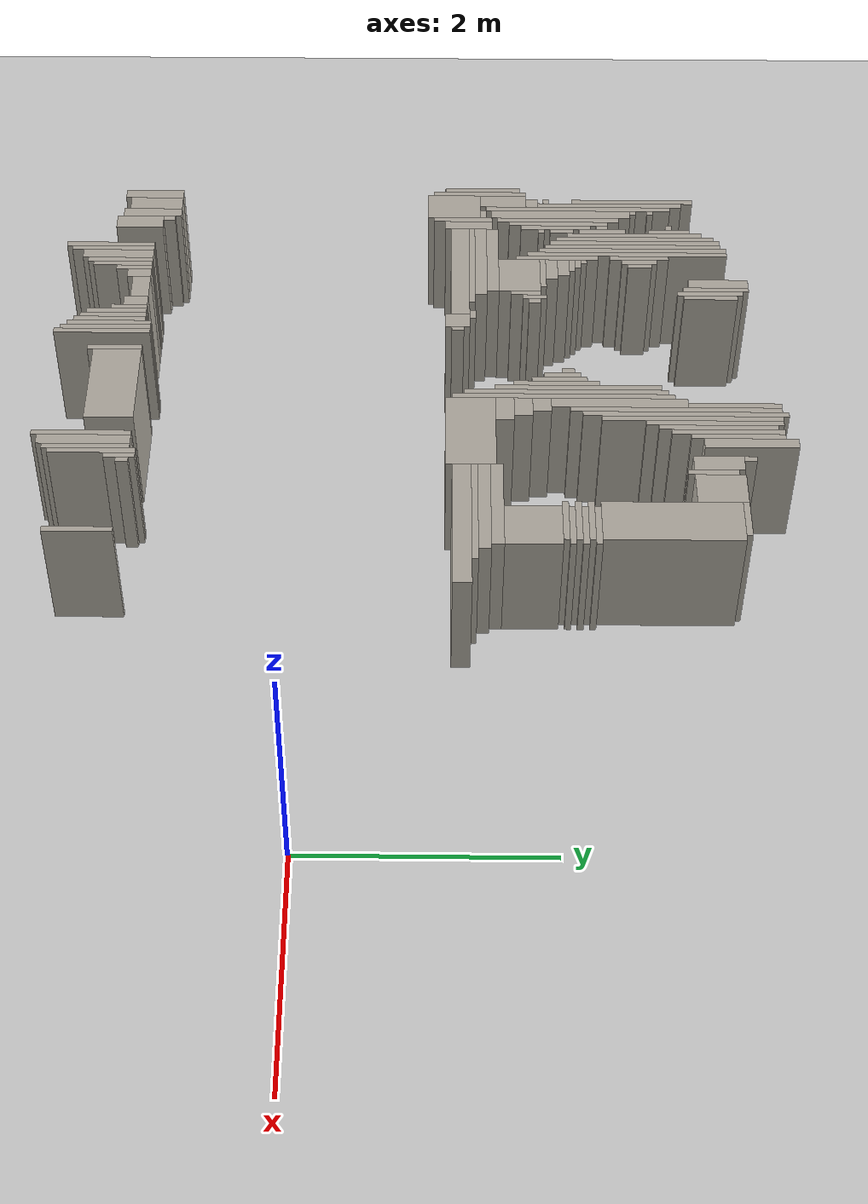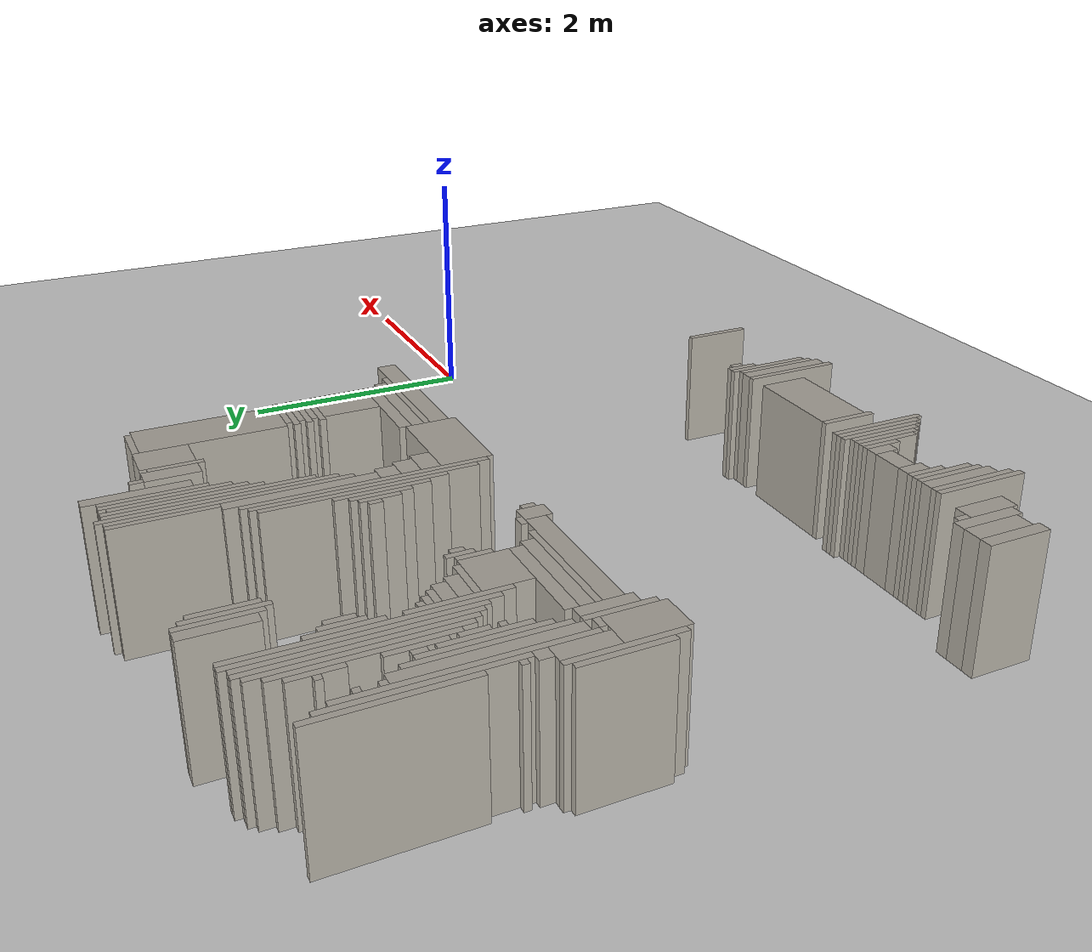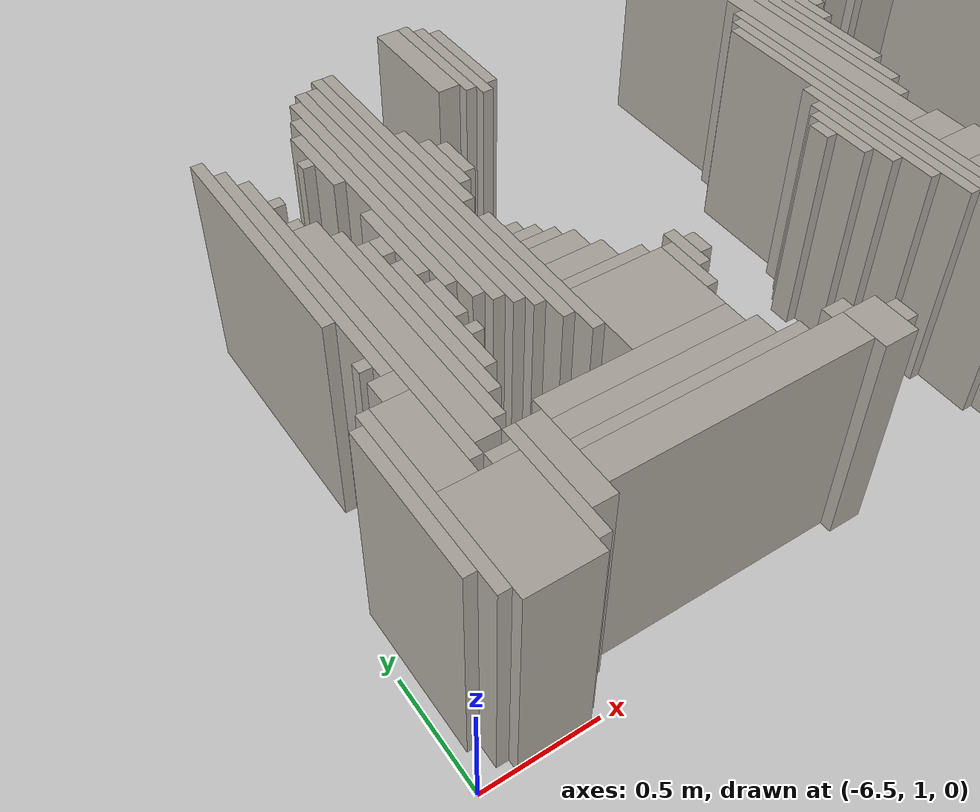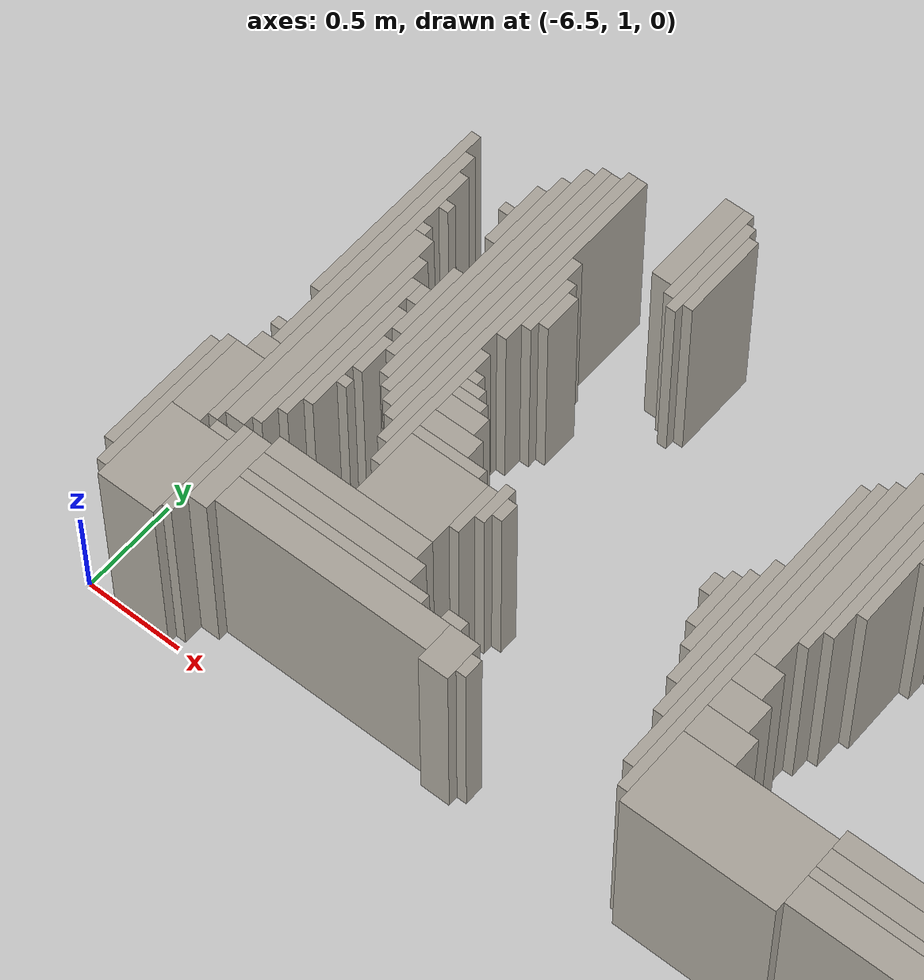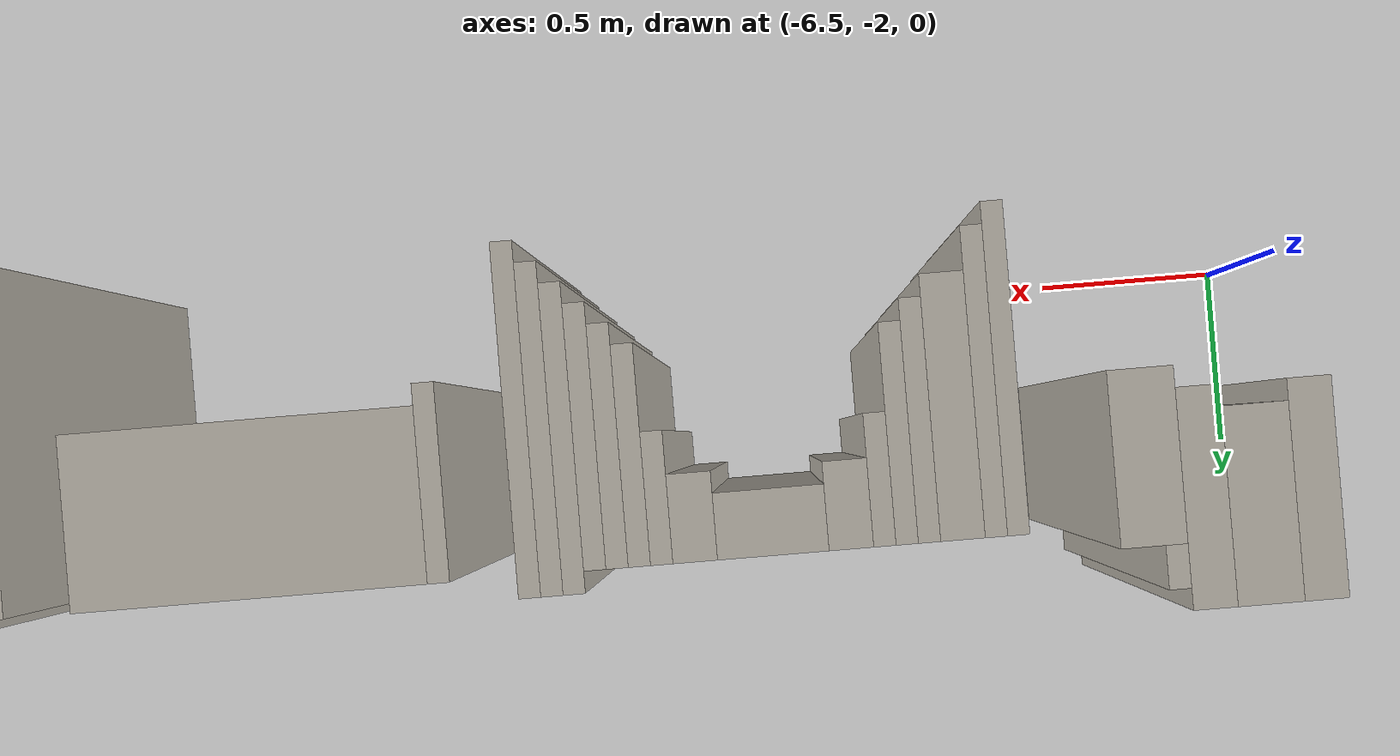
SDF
<sdf version="1.6">
 <world name="fr079_office">
  <include><uri>model://sun</uri></include>
  <include><uri>model://ground_plane</uri></include>
  <model name="fr079_office_walls">
   <static>true</static>
   <link name="w1408">
    <pose>-3.373 -1.756 0.500 0 0 0</pose>
    <collision name="c"><geometry><box><size>0.050 0.800 1.000</size></box></geometry></collision>
    <visual name="v">
     <geometry><box><size>0.050 0.800 1.000</size></box></geometry>
     <material><ambient>0.68 0.66 0.62 1</ambient><diffuse>0.68 0.66 0.62 1</diffuse></material>
    </visual>
   </link>
   <link name="w1421">
    <pose>-5.673 -1.731 0.500 0 0 0</pose>
    <collision name="c"><geometry><box><size>0.050 0.750 1.000</size></box></geometry></collision>
    <visual name="v">
     <geometry><box><size>0.050 0.750 1.000</size></box></geometry>
     <material><ambient>0.68 0.66 0.62 1</ambient><diffuse>0.68 0.66 0.62 1</diffuse></material>
    </visual>
   </link>
   <link name="w1422">
    <pose>-4.573 -1.706 0.500 0 0 0</pose>
    <collision name="c"><geometry><box><size>0.050 0.800 1.000</size></box></geometry></collision>
    <visual name="v">
     <geometry><box><size>0.050 0.800 1.000</size></box></geometry>
     <material><ambient>0.68 0.66 0.62 1</ambient><diffuse>0.68 0.66 0.62 1</diffuse></material>
    </visual>
   </link>
   <link name="w1423">
    <pose>-3.298 -1.731 0.500 0 0 0</pose>
    <collision name="c"><geometry><box><size>0.100 0.750 1.000</size></box></geometry></collision>
    <visual name="v">
     <geometry><box><size>0.100 0.750 1.000</size></box></geometry>
     <material><ambient>0.68 0.66 0.62 1</ambient><diffuse>0.68 0.66 0.62 1</diffuse></material>
    </visual>
   </link>
   <link name="w1435">
    <pose>-5.623 -1.706 0.500 0 0 0</pose>
    <collision name="c"><geometry><box><size>0.050 0.700 1.000</size></box></geometry></collision>
    <visual name="v">
     <geometry><box><size>0.050 0.700 1.000</size></box></geometry>
     <material><ambient>0.68 0.66 0.62 1</ambient><diffuse>0.68 0.66 0.62 1</diffuse></material>
    </visual>
   </link>
   <link name="w1436">
    <pose>-4.623 -1.681 0.500 0 0 0</pose>
    <collision name="c"><geometry><box><size>0.050 0.750 1.000</size></box></geometry></collision>
    <visual name="v">
     <geometry><box><size>0.050 0.750 1.000</size></box></geometry>
     <material><ambient>0.68 0.66 0.62 1</ambient><diffuse>0.68 0.66 0.62 1</diffuse></material>
    </visual>
   </link>
   <link name="w1437">
    <pose>-3.223 -1.706 0.500 0 0 0</pose>
    <collision name="c"><geometry><box><size>0.050 0.700 1.000</size></box></geometry></collision>
    <visual name="v">
     <geometry><box><size>0.050 0.700 1.000</size></box></geometry>
     <material><ambient>0.68 0.66 0.62 1</ambient><diffuse>0.68 0.66 0.62 1</diffuse></material>
    </visual>
   </link>
   <link name="w1452">
    <pose>-4.673 -1.656 0.500 0 0 0</pose>
    <collision name="c"><geometry><box><size>0.050 0.700 1.000</size></box></geometry></collision>
    <visual name="v">
     <geometry><box><size>0.050 0.700 1.000</size></box></geometry>
     <material><ambient>0.68 0.66 0.62 1</ambient><diffuse>0.68 0.66 0.62 1</diffuse></material>
    </visual>
   </link>
   <link name="w1455">
    <pose>-3.173 -1.656 0.500 0 0 0</pose>
    <collision name="c"><geometry><box><size>0.050 0.700 1.000</size></box></geometry></collision>
    <visual name="v">
     <geometry><box><size>0.050 0.700 1.000</size></box></geometry>
     <material><ambient>0.68 0.66 0.62 1</ambient><diffuse>0.68 0.66 0.62 1</diffuse></material>
    </visual>
   </link>
   <link name="w1466">
    <pose>-5.548 -1.656 0.500 0 0 0</pose>
    <collision name="c"><geometry><box><size>0.100 0.600 1.000</size></box></geometry></collision>
    <visual name="v">
     <geometry><box><size>0.100 0.600 1.000</size></box></geometry>
     <material><ambient>0.68 0.66 0.62 1</ambient><diffuse>0.68 0.66 0.62 1</diffuse></material>
    </visual>
   </link>
   <link name="w1467">
    <pose>-4.723 -1.656 0.500 0 0 0</pose>
    <collision name="c"><geometry><box><size>0.050 0.600 1.000</size></box></geometry></collision>
    <visual name="v">
     <geometry><box><size>0.050 0.600 1.000</size></box></geometry>
     <material><ambient>0.68 0.66 0.62 1</ambient><diffuse>0.68 0.66 0.62 1</diffuse></material>
    </visual>
   </link>
   <link name="w1469">
    <pose>-2.323 -1.681 0.500 0 0 0</pose>
    <collision name="c"><geometry><box><size>0.050 0.550 1.000</size></box></geometry></collision>
    <visual name="v">
     <geometry><box><size>0.050 0.550 1.000</size></box></geometry>
     <material><ambient>0.68 0.66 0.62 1</ambient><diffuse>0.68 0.66 0.62 1</diffuse></material>
    </visual>
   </link>
   <link name="w1487">
    <pose>-5.473 -1.631 0.500 0 0 0</pose>
    <collision name="c"><geometry><box><size>0.050 0.550 1.000</size></box></geometry></collision>
    <visual name="v">
     <geometry><box><size>0.050 0.550 1.000</size></box></geometry>
     <material><ambient>0.68 0.66 0.62 1</ambient><diffuse>0.68 0.66 0.62 1</diffuse></material>
    </visual>
   </link>
   <link name="w1488">
    <pose>-4.773 -1.631 0.500 0 0 0</pose>
    <collision name="c"><geometry><box><size>0.050 0.550 1.000</size></box></geometry></collision>
    <visual name="v">
     <geometry><box><size>0.050 0.550 1.000</size></box></geometry>
     <material><ambient>0.68 0.66 0.62 1</ambient><diffuse>0.68 0.66 0.62 1</diffuse></material>
    </visual>
   </link>
   <link name="w1503">
    <pose>-5.423 -1.606 0.500 0 0 0</pose>
    <collision name="c"><geometry><box><size>0.050 0.500 1.000</size></box></geometry></collision>
    <visual name="v">
     <geometry><box><size>0.050 0.500 1.000</size></box></geometry>
     <material><ambient>0.68 0.66 0.62 1</ambient><diffuse>0.68 0.66 0.62 1</diffuse></material>
    </visual>
   </link>
   <link name="w1504">
    <pose>-4.823 -1.606 0.500 0 0 0</pose>
    <collision name="c"><geometry><box><size>0.050 0.500 1.000</size></box></geometry></collision>
    <visual name="v">
     <geometry><box><size>0.050 0.500 1.000</size></box></geometry>
     <material><ambient>0.68 0.66 0.62 1</ambient><diffuse>0.68 0.66 0.62 1</diffuse></material>
    </visual>
   </link>
   <link name="w1516">
    <pose>-4.373 -1.581 0.500 0 0 0</pose>
    <collision name="c"><geometry><box><size>0.050 0.450 1.000</size></box></geometry></collision>
    <visual name="v">
     <geometry><box><size>0.050 0.450 1.000</size></box></geometry>
     <material><ambient>0.68 0.66 0.62 1</ambient><diffuse>0.68 0.66 0.62 1</diffuse></material>
    </visual>
   </link>
   <link name="w1532">
    <pose>-3.948 -1.556 0.500 0 0 0</pose>
    <collision name="c"><geometry><box><size>0.800 0.400 1.000</size></box></geometry></collision>
    <visual name="v">
     <geometry><box><size>0.800 0.400 1.000</size></box></geometry>
     <material><ambient>0.68 0.66 0.62 1</ambient><diffuse>0.68 0.66 0.62 1</diffuse></material>
    </visual>
   </link>
   <link name="w1552">
    <pose>-5.973 -1.506 0.500 0 0 0</pose>
    <collision name="c"><geometry><box><size>0.150 0.400 1.000</size></box></geometry></collision>
    <visual name="v">
     <geometry><box><size>0.150 0.400 1.000</size></box></geometry>
     <material><ambient>0.68 0.66 0.62 1</ambient><diffuse>0.68 0.66 0.62 1</diffuse></material>
    </visual>
   </link>
   <link name="w1574">
    <pose>-6.348 -1.406 0.500 0 0 0</pose>
    <collision name="c"><geometry><box><size>0.100 0.500 1.000</size></box></geometry></collision>
    <visual name="v">
     <geometry><box><size>0.100 0.500 1.000</size></box></geometry>
     <material><ambient>0.68 0.66 0.62 1</ambient><diffuse>0.68 0.66 0.62 1</diffuse></material>
    </visual>
   </link>
   <link name="w1575">
    <pose>-6.098 -1.406 0.500 0 0 0</pose>
    <collision name="c"><geometry><box><size>0.100 0.500 1.000</size></box></geometry></collision>
    <visual name="v">
     <geometry><box><size>0.100 0.500 1.000</size></box></geometry>
     <material><ambient>0.68 0.66 0.62 1</ambient><diffuse>0.68 0.66 0.62 1</diffuse></material>
    </visual>
   </link>
   <link name="w1576">
    <pose>-5.373 -1.506 0.500 0 0 0</pose>
    <collision name="c"><geometry><box><size>0.050 0.300 1.000</size></box></geometry></collision>
    <visual name="v">
     <geometry><box><size>0.050 0.300 1.000</size></box></geometry>
     <material><ambient>0.68 0.66 0.62 1</ambient><diffuse>0.68 0.66 0.62 1</diffuse></material>
    </visual>
   </link>
   <link name="w1577">
    <pose>-4.873 -1.506 0.500 0 0 0</pose>
    <collision name="c"><geometry><box><size>0.050 0.300 1.000</size></box></geometry></collision>
    <visual name="v">
     <geometry><box><size>0.050 0.300 1.000</size></box></geometry>
     <material><ambient>0.68 0.66 0.62 1</ambient><diffuse>0.68 0.66 0.62 1</diffuse></material>
    </visual>
   </link>
   <link name="w1607">
    <pose>-6.223 -1.381 0.500 0 0 0</pose>
    <collision name="c"><geometry><box><size>0.150 0.450 1.000</size></box></geometry></collision>
    <visual name="v">
     <geometry><box><size>0.150 0.450 1.000</size></box></geometry>
     <material><ambient>0.68 0.66 0.62 1</ambient><diffuse>0.68 0.66 0.62 1</diffuse></material>
    </visual>
   </link>
   <link name="w1635">
    <pose>-5.298 -1.456 0.500 0 0 0</pose>
    <collision name="c"><geometry><box><size>0.100 0.200 1.000</size></box></geometry></collision>
    <visual name="v">
     <geometry><box><size>0.100 0.200 1.000</size></box></geometry>
     <material><ambient>0.68 0.66 0.62 1</ambient><diffuse>0.68 0.66 0.62 1</diffuse></material>
    </visual>
   </link>
   <link name="w1636">
    <pose>-4.948 -1.456 0.500 0 0 0</pose>
    <collision name="c"><geometry><box><size>0.100 0.200 1.000</size></box></geometry></collision>
    <visual name="v">
     <geometry><box><size>0.100 0.200 1.000</size></box></geometry>
     <material><ambient>0.68 0.66 0.62 1</ambient><diffuse>0.68 0.66 0.62 1</diffuse></material>
    </visual>
   </link>
   <link name="w1637">
    <pose>-3.123 -1.431 0.500 0 0 0</pose>
    <collision name="c"><geometry><box><size>0.050 0.250 1.000</size></box></geometry></collision>
    <visual name="v">
     <geometry><box><size>0.050 0.250 1.000</size></box></geometry>
     <material><ambient>0.68 0.66 0.62 1</ambient><diffuse>0.68 0.66 0.62 1</diffuse></material>
    </visual>
   </link>
   <link name="w1667">
    <pose>-5.123 -1.431 0.500 0 0 0</pose>
    <collision name="c"><geometry><box><size>0.250 0.150 1.000</size></box></geometry></collision>
    <visual name="v">
     <geometry><box><size>0.250 0.150 1.000</size></box></geometry>
     <material><ambient>0.68 0.66 0.62 1</ambient><diffuse>0.68 0.66 0.62 1</diffuse></material>
    </visual>
   </link>
   <link name="w1688">
    <pose>-3.073 -1.406 0.500 0 0 0</pose>
    <collision name="c"><geometry><box><size>0.050 0.100 1.000</size></box></geometry></collision>
    <visual name="v">
     <geometry><box><size>0.050 0.100 1.000</size></box></geometry>
     <material><ambient>0.68 0.66 0.62 1</ambient><diffuse>0.68 0.66 0.62 1</diffuse></material>
    </visual>
   </link>
   <link name="w1722">
    <pose>-6.023 -1.256 0.500 0 0 0</pose>
    <collision name="c"><geometry><box><size>0.050 0.100 1.000</size></box></geometry></collision>
    <visual name="v">
     <geometry><box><size>0.050 0.100 1.000</size></box></geometry>
     <material><ambient>0.68 0.66 0.62 1</ambient><diffuse>0.68 0.66 0.62 1</diffuse></material>
    </visual>
   </link>
   <link name="w1830">
    <pose>-6.198 1.219 0.500 0 0 0</pose>
    <collision name="c"><geometry><box><size>0.300 0.450 1.000</size></box></geometry></collision>
    <visual name="v">
     <geometry><box><size>0.300 0.450 1.000</size></box></geometry>
     <material><ambient>0.68 0.66 0.62 1</ambient><diffuse>0.68 0.66 0.62 1</diffuse></material>
    </visual>
   </link>
   <link name="w1844">
    <pose>-6.373 1.444 0.500 0 0 0</pose>
    <collision name="c"><geometry><box><size>0.050 0.800 1.000</size></box></geometry></collision>
    <visual name="v">
     <geometry><box><size>0.050 0.800 1.000</size></box></geometry>
     <material><ambient>0.68 0.66 0.62 1</ambient><diffuse>0.68 0.66 0.62 1</diffuse></material>
    </visual>
   </link>
   <link name="w1845">
    <pose>-6.023 1.294 0.500 0 0 0</pose>
    <collision name="c"><geometry><box><size>0.050 0.500 1.000</size></box></geometry></collision>
    <visual name="v">
     <geometry><box><size>0.050 0.500 1.000</size></box></geometry>
     <material><ambient>0.68 0.66 0.62 1</ambient><diffuse>0.68 0.66 0.62 1</diffuse></material>
    </visual>
   </link>
   <link name="w1885">
    <pose>-6.423 1.469 0.500 0 0 0</pose>
    <collision name="c"><geometry><box><size>0.050 0.650 1.000</size></box></geometry></collision>
    <visual name="v">
     <geometry><box><size>0.050 0.650 1.000</size></box></geometry>
     <material><ambient>0.68 0.66 0.62 1</ambient><diffuse>0.68 0.66 0.62 1</diffuse></material>
    </visual>
   </link>
   <link name="w1886">
    <pose>-5.948 1.344 0.500 0 0 0</pose>
    <collision name="c"><geometry><box><size>0.100 0.400 1.000</size></box></geometry></collision>
    <visual name="v">
     <geometry><box><size>0.100 0.400 1.000</size></box></geometry>
     <material><ambient>0.68 0.66 0.62 1</ambient><diffuse>0.68 0.66 0.62 1</diffuse></material>
    </visual>
   </link>
   <link name="w1887">
    <pose>-4.723 1.244 0.500 0 0 0</pose>
    <collision name="c"><geometry><box><size>0.150 0.200 1.000</size></box></geometry></collision>
    <visual name="v">
     <geometry><box><size>0.150 0.200 1.000</size></box></geometry>
     <material><ambient>0.68 0.66 0.62 1</ambient><diffuse>0.68 0.66 0.62 1</diffuse></material>
    </visual>
   </link>
   <link name="w1888">
    <pose>-3.423 1.344 0.500 0 0 0</pose>
    <collision name="c"><geometry><box><size>0.750 0.400 1.000</size></box></geometry></collision>
    <visual name="v">
     <geometry><box><size>0.750 0.400 1.000</size></box></geometry>
     <material><ambient>0.68 0.66 0.62 1</ambient><diffuse>0.68 0.66 0.62 1</diffuse></material>
    </visual>
   </link>
   <link name="w1916">
    <pose>-5.348 1.269 0.500 0 0 0</pose>
    <collision name="c"><geometry><box><size>1.100 0.150 1.000</size></box></geometry></collision>
    <visual name="v">
     <geometry><box><size>1.100 0.150 1.000</size></box></geometry>
     <material><ambient>0.68 0.66 0.62 1</ambient><diffuse>0.68 0.66 0.62 1</diffuse></material>
    </visual>
   </link>
   <link name="w1917">
    <pose>-4.623 1.244 0.500 0 0 0</pose>
    <collision name="c"><geometry><box><size>0.050 0.100 1.000</size></box></geometry></collision>
    <visual name="v">
     <geometry><box><size>0.050 0.100 1.000</size></box></geometry>
     <material><ambient>0.68 0.66 0.62 1</ambient><diffuse>0.68 0.66 0.62 1</diffuse></material>
    </visual>
   </link>
   <link name="w1918">
    <pose>-3.823 2.094 0.500 0 0 0</pose>
    <collision name="c"><geometry><box><size>0.050 1.800 1.000</size></box></geometry></collision>
    <visual name="v">
     <geometry><box><size>0.050 1.800 1.000</size></box></geometry>
     <material><ambient>0.68 0.66 0.62 1</ambient><diffuse>0.68 0.66 0.62 1</diffuse></material>
    </visual>
   </link>
   <link name="w1919">
    <pose>-2.423 1.269 0.500 0 0 0</pose>
    <collision name="c"><geometry><box><size>1.250 0.150 1.000</size></box></geometry></collision>
    <visual name="v">
     <geometry><box><size>1.250 0.150 1.000</size></box></geometry>
     <material><ambient>0.68 0.66 0.62 1</ambient><diffuse>0.68 0.66 0.62 1</diffuse></material>
    </visual>
   </link>
   <link name="w1965">
    <pose>-3.873 2.119 0.500 0 0 0</pose>
    <collision name="c"><geometry><box><size>0.050 1.650 1.000</size></box></geometry></collision>
    <visual name="v">
     <geometry><box><size>0.050 1.650 1.000</size></box></geometry>
     <material><ambient>0.68 0.66 0.62 1</ambient><diffuse>0.68 0.66 0.62 1</diffuse></material>
    </visual>
   </link>
   <link name="w1977">
    <pose>-5.423 1.369 0.500 0 0 0</pose>
    <collision name="c"><geometry><box><size>0.950 0.050 1.000</size></box></geometry></collision>
    <visual name="v">
     <geometry><box><size>0.950 0.050 1.000</size></box></geometry>
     <material><ambient>0.68 0.66 0.62 1</ambient><diffuse>0.68 0.66 0.62 1</diffuse></material>
    </visual>
   </link>
   <link name="w1978">
    <pose>-4.798 1.369 0.500 0 0 0</pose>
    <collision name="c"><geometry><box><size>0.100 0.050 1.000</size></box></geometry></collision>
    <visual name="v">
     <geometry><box><size>0.100 0.050 1.000</size></box></geometry>
     <material><ambient>0.68 0.66 0.62 1</ambient><diffuse>0.68 0.66 0.62 1</diffuse></material>
    </visual>
   </link>
   <link name="w1979">
    <pose>-2.548 1.369 0.500 0 0 0</pose>
    <collision name="c"><geometry><box><size>1.000 0.050 1.000</size></box></geometry></collision>
    <visual name="v">
     <geometry><box><size>1.000 0.050 1.000</size></box></geometry>
     <material><ambient>0.68 0.66 0.62 1</ambient><diffuse>0.68 0.66 0.62 1</diffuse></material>
    </visual>
   </link>
   <link name="w1990">
    <pose>-5.473 1.444 0.500 0 0 0</pose>
    <collision name="c"><geometry><box><size>0.850 0.100 1.000</size></box></geometry></collision>
    <visual name="v">
     <geometry><box><size>0.850 0.100 1.000</size></box></geometry>
     <material><ambient>0.68 0.66 0.62 1</ambient><diffuse>0.68 0.66 0.62 1</diffuse></material>
    </visual>
   </link>
   <link name="w1991">
    <pose>-2.598 1.444 0.500 0 0 0</pose>
    <collision name="c"><geometry><box><size>0.900 0.100 1.000</size></box></geometry></collision>
    <visual name="v">
     <geometry><box><size>0.900 0.100 1.000</size></box></geometry>
     <material><ambient>0.68 0.66 0.62 1</ambient><diffuse>0.68 0.66 0.62 1</diffuse></material>
    </visual>
   </link>
   <link name="w2010">
    <pose>-6.273 1.644 0.500 0 0 0</pose>
    <collision name="c"><geometry><box><size>0.150 0.400 1.000</size></box></geometry></collision>
    <visual name="v">
     <geometry><box><size>0.150 0.400 1.000</size></box></geometry>
     <material><ambient>0.68 0.66 0.62 1</ambient><diffuse>0.68 0.66 0.62 1</diffuse></material>
    </visual>
   </link>
   <link name="w2011">
    <pose>-6.098 1.469 0.500 0 0 0</pose>
    <collision name="c"><geometry><box><size>0.100 0.050 1.000</size></box></geometry></collision>
    <visual name="v">
     <geometry><box><size>0.100 0.050 1.000</size></box></geometry>
     <material><ambient>0.68 0.66 0.62 1</ambient><diffuse>0.68 0.66 0.62 1</diffuse></material>
    </visual>
   </link>
   <link name="w2026">
    <pose>-6.173 2.294 0.500 0 0 0</pose>
    <collision name="c"><geometry><box><size>0.050 1.600 1.000</size></box></geometry></collision>
    <visual name="v">
     <geometry><box><size>0.050 1.600 1.000</size></box></geometry>
     <material><ambient>0.68 0.66 0.62 1</ambient><diffuse>0.68 0.66 0.62 1</diffuse></material>
    </visual>
   </link>
   <link name="w2027">
    <pose>-5.498 1.544 0.500 0 0 0</pose>
    <collision name="c"><geometry><box><size>0.800 0.100 1.000</size></box></geometry></collision>
    <visual name="v">
     <geometry><box><size>0.800 0.100 1.000</size></box></geometry>
     <material><ambient>0.68 0.66 0.62 1</ambient><diffuse>0.68 0.66 0.62 1</diffuse></material>
    </visual>
   </link>
   <link name="w2028">
    <pose>-2.623 1.544 0.500 0 0 0</pose>
    <collision name="c"><geometry><box><size>0.850 0.100 1.000</size></box></geometry></collision>
    <visual name="v">
     <geometry><box><size>0.850 0.100 1.000</size></box></geometry>
     <material><ambient>0.68 0.66 0.62 1</ambient><diffuse>0.68 0.66 0.62 1</diffuse></material>
    </visual>
   </link>
   <link name="w2041">
    <pose>-6.098 2.144 0.500 0 0 0</pose>
    <collision name="c"><geometry><box><size>0.100 1.200 1.000</size></box></geometry></collision>
    <visual name="v">
     <geometry><box><size>0.100 1.200 1.000</size></box></geometry>
     <material><ambient>0.68 0.66 0.62 1</ambient><diffuse>0.68 0.66 0.62 1</diffuse></material>
    </visual>
   </link>
   <link name="w2042">
    <pose>-3.923 2.219 0.500 0 0 0</pose>
    <collision name="c"><geometry><box><size>0.050 1.350 1.000</size></box></geometry></collision>
    <visual name="v">
     <geometry><box><size>0.050 1.350 1.000</size></box></geometry>
     <material><ambient>0.68 0.66 0.62 1</ambient><diffuse>0.68 0.66 0.62 1</diffuse></material>
    </visual>
   </link>
   <link name="w2043">
    <pose>-3.673 1.619 0.500 0 0 0</pose>
    <collision name="c"><geometry><box><size>0.250 0.150 1.000</size></box></geometry></collision>
    <visual name="v">
     <geometry><box><size>0.250 0.150 1.000</size></box></geometry>
     <material><ambient>0.68 0.66 0.62 1</ambient><diffuse>0.68 0.66 0.62 1</diffuse></material>
    </visual>
   </link>
   <link name="w2057">
    <pose>-6.023 2.119 0.500 0 0 0</pose>
    <collision name="c"><geometry><box><size>0.050 1.050 1.000</size></box></geometry></collision>
    <visual name="v">
     <geometry><box><size>0.050 1.050 1.000</size></box></geometry>
     <material><ambient>0.68 0.66 0.62 1</ambient><diffuse>0.68 0.66 0.62 1</diffuse></material>
    </visual>
   </link>
   <link name="w2058">
    <pose>-5.298 1.769 0.500 0 0 0</pose>
    <collision name="c"><geometry><box><size>0.400 0.350 1.000</size></box></geometry></collision>
    <visual name="v">
     <geometry><box><size>0.400 0.350 1.000</size></box></geometry>
     <material><ambient>0.68 0.66 0.62 1</ambient><diffuse>0.68 0.66 0.62 1</diffuse></material>
    </visual>
   </link>
   <link name="w2059">
    <pose>-2.398 1.819 0.500 0 0 0</pose>
    <collision name="c"><geometry><box><size>0.400 0.450 1.000</size></box></geometry></collision>
    <visual name="v">
     <geometry><box><size>0.400 0.450 1.000</size></box></geometry>
     <material><ambient>0.68 0.66 0.62 1</ambient><diffuse>0.68 0.66 0.62 1</diffuse></material>
    </visual>
   </link>
   <link name="w2081">
    <pose>-5.973 2.119 0.500 0 0 0</pose>
    <collision name="c"><geometry><box><size>0.050 0.850 1.000</size></box></geometry></collision>
    <visual name="v">
     <geometry><box><size>0.050 0.850 1.000</size></box></geometry>
     <material><ambient>0.68 0.66 0.62 1</ambient><diffuse>0.68 0.66 0.62 1</diffuse></material>
    </visual>
   </link>
   <link name="w2082">
    <pose>-5.073 1.819 0.500 0 0 0</pose>
    <collision name="c"><geometry><box><size>0.050 0.250 1.000</size></box></geometry></collision>
    <visual name="v">
     <geometry><box><size>0.050 0.250 1.000</size></box></geometry>
     <material><ambient>0.68 0.66 0.62 1</ambient><diffuse>0.68 0.66 0.62 1</diffuse></material>
    </visual>
   </link>
   <link name="w2083">
    <pose>-3.973 2.044 0.500 0 0 0</pose>
    <collision name="c"><geometry><box><size>0.050 0.700 1.000</size></box></geometry></collision>
    <visual name="v">
     <geometry><box><size>0.050 0.700 1.000</size></box></geometry>
     <material><ambient>0.68 0.66 0.62 1</ambient><diffuse>0.68 0.66 0.62 1</diffuse></material>
    </visual>
   </link>
   <link name="w2084">
    <pose>-3.698 1.769 0.500 0 0 0</pose>
    <collision name="c"><geometry><box><size>0.200 0.150 1.000</size></box></geometry></collision>
    <visual name="v">
     <geometry><box><size>0.200 0.150 1.000</size></box></geometry>
     <material><ambient>0.68 0.66 0.62 1</ambient><diffuse>0.68 0.66 0.62 1</diffuse></material>
    </visual>
   </link>
   <link name="w2097">
    <pose>-5.523 2.094 0.500 0 0 0</pose>
    <collision name="c"><geometry><box><size>0.050 0.700 1.000</size></box></geometry></collision>
    <visual name="v">
     <geometry><box><size>0.050 0.700 1.000</size></box></geometry>
     <material><ambient>0.68 0.66 0.62 1</ambient><diffuse>0.68 0.66 0.62 1</diffuse></material>
    </visual>
   </link>
   <link name="w2113">
    <pose>-5.923 2.094 0.500 0 0 0</pose>
    <collision name="c"><geometry><box><size>0.050 0.600 1.000</size></box></geometry></collision>
    <visual name="v">
     <geometry><box><size>0.050 0.600 1.000</size></box></geometry>
     <material><ambient>0.68 0.66 0.62 1</ambient><diffuse>0.68 0.66 0.62 1</diffuse></material>
    </visual>
   </link>
   <link name="w2114">
    <pose>-5.023 1.894 0.500 0 0 0</pose>
    <collision name="c"><geometry><box><size>0.050 0.200 1.000</size></box></geometry></collision>
    <visual name="v">
     <geometry><box><size>0.050 0.200 1.000</size></box></geometry>
     <material><ambient>0.68 0.66 0.62 1</ambient><diffuse>0.68 0.66 0.62 1</diffuse></material>
    </visual>
   </link>
   <link name="w2134">
    <pose>-6.248 1.894 0.500 0 0 0</pose>
    <collision name="c"><geometry><box><size>0.100 0.100 1.000</size></box></geometry></collision>
    <visual name="v">
     <geometry><box><size>0.100 0.100 1.000</size></box></geometry>
     <material><ambient>0.68 0.66 0.62 1</ambient><diffuse>0.68 0.66 0.62 1</diffuse></material>
    </visual>
   </link>
   <link name="w2135">
    <pose>-5.573 2.694 0.500 0 0 0</pose>
    <collision name="c"><geometry><box><size>0.050 1.700 1.000</size></box></geometry></collision>
    <visual name="v">
     <geometry><box><size>0.050 1.700 1.000</size></box></geometry>
     <material><ambient>0.68 0.66 0.62 1</ambient><diffuse>0.68 0.66 0.62 1</diffuse></material>
    </visual>
   </link>
   <link name="w2136">
    <pose>-4.973 1.894 0.500 0 0 0</pose>
    <collision name="c"><geometry><box><size>0.050 0.100 1.000</size></box></geometry></collision>
    <visual name="v">
     <geometry><box><size>0.050 0.100 1.000</size></box></geometry>
     <material><ambient>0.68 0.66 0.62 1</ambient><diffuse>0.68 0.66 0.62 1</diffuse></material>
    </visual>
   </link>
   <link name="w2137">
    <pose>-4.023 2.069 0.500 0 0 0</pose>
    <collision name="c"><geometry><box><size>0.050 0.450 1.000</size></box></geometry></collision>
    <visual name="v">
     <geometry><box><size>0.050 0.450 1.000</size></box></geometry>
     <material><ambient>0.68 0.66 0.62 1</ambient><diffuse>0.68 0.66 0.62 1</diffuse></material>
    </visual>
   </link>
   <link name="w2138">
    <pose>-3.723 1.919 0.500 0 0 0</pose>
    <collision name="c"><geometry><box><size>0.150 0.150 1.000</size></box></geometry></collision>
    <visual name="v">
     <geometry><box><size>0.150 0.150 1.000</size></box></geometry>
     <material><ambient>0.68 0.66 0.62 1</ambient><diffuse>0.68 0.66 0.62 1</diffuse></material>
    </visual>
   </link>
   <link name="w2157">
    <pose>-6.223 2.569 0.500 0 0 0</pose>
    <collision name="c"><geometry><box><size>0.050 1.250 1.000</size></box></geometry></collision>
    <visual name="v">
     <geometry><box><size>0.050 1.250 1.000</size></box></geometry>
     <material><ambient>0.68 0.66 0.62 1</ambient><diffuse>0.68 0.66 0.62 1</diffuse></material>
    </visual>
   </link>
   <link name="w2158">
    <pose>-5.873 1.969 0.500 0 0 0</pose>
    <collision name="c"><geometry><box><size>0.050 0.050 1.000</size></box></geometry></collision>
    <visual name="v">
     <geometry><box><size>0.050 0.050 1.000</size></box></geometry>
     <material><ambient>0.68 0.66 0.62 1</ambient><diffuse>0.68 0.66 0.62 1</diffuse></material>
    </visual>
   </link>
   <link name="w2159">
    <pose>-5.623 2.744 0.500 0 0 0</pose>
    <collision name="c"><geometry><box><size>0.050 1.600 1.000</size></box></geometry></collision>
    <visual name="v">
     <geometry><box><size>0.050 1.600 1.000</size></box></geometry>
     <material><ambient>0.68 0.66 0.62 1</ambient><diffuse>0.68 0.66 0.62 1</diffuse></material>
    </visual>
   </link>
   <link name="w2160">
    <pose>-5.323 1.969 0.500 0 0 0</pose>
    <collision name="c"><geometry><box><size>0.350 0.050 1.000</size></box></geometry></collision>
    <visual name="v">
     <geometry><box><size>0.350 0.050 1.000</size></box></geometry>
     <material><ambient>0.68 0.66 0.62 1</ambient><diffuse>0.68 0.66 0.62 1</diffuse></material>
    </visual>
   </link>
   <link name="w2161">
    <pose>-4.073 2.094 0.500 0 0 0</pose>
    <collision name="c"><geometry><box><size>0.050 0.300 1.000</size></box></geometry></collision>
    <visual name="v">
     <geometry><box><size>0.050 0.300 1.000</size></box></geometry>
     <material><ambient>0.68 0.66 0.62 1</ambient><diffuse>0.68 0.66 0.62 1</diffuse></material>
    </visual>
   </link>
   <link name="w2172">
    <pose>-6.273 2.019 0.500 0 0 0</pose>
    <collision name="c"><geometry><box><size>0.050 0.050 1.000</size></box></geometry></collision>
    <visual name="v">
     <geometry><box><size>0.050 0.050 1.000</size></box></geometry>
     <material><ambient>0.68 0.66 0.62 1</ambient><diffuse>0.68 0.66 0.62 1</diffuse></material>
    </visual>
   </link>
   <link name="w2173">
    <pose>-5.673 2.744 0.500 0 0 0</pose>
    <collision name="c"><geometry><box><size>0.050 1.500 1.000</size></box></geometry></collision>
    <visual name="v">
     <geometry><box><size>0.050 1.500 1.000</size></box></geometry>
     <material><ambient>0.68 0.66 0.62 1</ambient><diffuse>0.68 0.66 0.62 1</diffuse></material>
    </visual>
   </link>
   <link name="w2174">
    <pose>-5.373 2.044 0.500 0 0 0</pose>
    <collision name="c"><geometry><box><size>0.250 0.100 1.000</size></box></geometry></collision>
    <visual name="v">
     <geometry><box><size>0.250 0.100 1.000</size></box></geometry>
     <material><ambient>0.68 0.66 0.62 1</ambient><diffuse>0.68 0.66 0.62 1</diffuse></material>
    </visual>
   </link>
   <link name="w2175">
    <pose>-3.748 2.544 0.500 0 0 0</pose>
    <collision name="c"><geometry><box><size>0.100 1.100 1.000</size></box></geometry></collision>
    <visual name="v">
     <geometry><box><size>0.100 1.100 1.000</size></box></geometry>
     <material><ambient>0.68 0.66 0.62 1</ambient><diffuse>0.68 0.66 0.62 1</diffuse></material>
    </visual>
   </link>
   <link name="w2183">
    <pose>-5.873 2.144 0.500 0 0 0</pose>
    <collision name="c"><geometry><box><size>0.050 0.200 1.000</size></box></geometry></collision>
    <visual name="v">
     <geometry><box><size>0.050 0.200 1.000</size></box></geometry>
     <material><ambient>0.68 0.66 0.62 1</ambient><diffuse>0.68 0.66 0.62 1</diffuse></material>
    </visual>
   </link>
   <link name="w2184">
    <pose>-5.723 2.769 0.500 0 0 0</pose>
    <collision name="c"><geometry><box><size>0.050 1.450 1.000</size></box></geometry></collision>
    <visual name="v">
     <geometry><box><size>0.050 1.450 1.000</size></box></geometry>
     <material><ambient>0.68 0.66 0.62 1</ambient><diffuse>0.68 0.66 0.62 1</diffuse></material>
    </visual>
   </link>
   <link name="w2185">
    <pose>-2.448 2.069 0.500 0 0 0</pose>
    <collision name="c"><geometry><box><size>0.400 0.050 1.000</size></box></geometry></collision>
    <visual name="v">
     <geometry><box><size>0.400 0.050 1.000</size></box></geometry>
     <material><ambient>0.68 0.66 0.62 1</ambient><diffuse>0.68 0.66 0.62 1</diffuse></material>
    </visual>
   </link>
   <link name="w2193">
    <pose>-5.773 2.769 0.500 0 0 0</pose>
    <collision name="c"><geometry><box><size>0.050 1.350 1.000</size></box></geometry></collision>
    <visual name="v">
     <geometry><box><size>0.050 1.350 1.000</size></box></geometry>
     <material><ambient>0.68 0.66 0.62 1</ambient><diffuse>0.68 0.66 0.62 1</diffuse></material>
    </visual>
   </link>
   <link name="w2194">
    <pose>-5.398 2.144 0.500 0 0 0</pose>
    <collision name="c"><geometry><box><size>0.200 0.100 1.000</size></box></geometry></collision>
    <visual name="v">
     <geometry><box><size>0.200 0.100 1.000</size></box></geometry>
     <material><ambient>0.68 0.66 0.62 1</ambient><diffuse>0.68 0.66 0.62 1</diffuse></material>
    </visual>
   </link>
   <link name="w2195">
    <pose>-4.123 2.144 0.500 0 0 0</pose>
    <collision name="c"><geometry><box><size>0.050 0.100 1.000</size></box></geometry></collision>
    <visual name="v">
     <geometry><box><size>0.050 0.100 1.000</size></box></geometry>
     <material><ambient>0.68 0.66 0.62 1</ambient><diffuse>0.68 0.66 0.62 1</diffuse></material>
    </visual>
   </link>
   <link name="w2196">
    <pose>-2.398 2.119 0.500 0 0 0</pose>
    <collision name="c"><geometry><box><size>0.400 0.050 1.000</size></box></geometry></collision>
    <visual name="v">
     <geometry><box><size>0.400 0.050 1.000</size></box></geometry>
     <material><ambient>0.68 0.66 0.62 1</ambient><diffuse>0.68 0.66 0.62 1</diffuse></material>
    </visual>
   </link>
   <link name="w2203">
    <pose>-3.673 2.994 0.500 0 0 0</pose>
    <collision name="c"><geometry><box><size>0.050 1.700 1.000</size></box></geometry></collision>
    <visual name="v">
     <geometry><box><size>0.050 1.700 1.000</size></box></geometry>
     <material><ambient>0.68 0.66 0.62 1</ambient><diffuse>0.68 0.66 0.62 1</diffuse></material>
    </visual>
   </link>
   <link name="w2204">
    <pose>-2.448 2.169 0.500 0 0 0</pose>
    <collision name="c"><geometry><box><size>0.400 0.050 1.000</size></box></geometry></collision>
    <visual name="v">
     <geometry><box><size>0.400 0.050 1.000</size></box></geometry>
     <material><ambient>0.68 0.66 0.62 1</ambient><diffuse>0.68 0.66 0.62 1</diffuse></material>
    </visual>
   </link>
   <link name="w2210">
    <pose>-5.823 2.769 0.500 0 0 0</pose>
    <collision name="c"><geometry><box><size>0.050 1.150 1.000</size></box></geometry></collision>
    <visual name="v">
     <geometry><box><size>0.050 1.150 1.000</size></box></geometry>
     <material><ambient>0.68 0.66 0.62 1</ambient><diffuse>0.68 0.66 0.62 1</diffuse></material>
    </visual>
   </link>
   <link name="w2211">
    <pose>-5.423 2.219 0.500 0 0 0</pose>
    <collision name="c"><geometry><box><size>0.150 0.050 1.000</size></box></geometry></collision>
    <visual name="v">
     <geometry><box><size>0.150 0.050 1.000</size></box></geometry>
     <material><ambient>0.68 0.66 0.62 1</ambient><diffuse>0.68 0.66 0.62 1</diffuse></material>
    </visual>
   </link>
   <link name="w2212">
    <pose>-2.398 2.219 0.500 0 0 0</pose>
    <collision name="c"><geometry><box><size>0.400 0.050 1.000</size></box></geometry></collision>
    <visual name="v">
     <geometry><box><size>0.400 0.050 1.000</size></box></geometry>
     <material><ambient>0.68 0.66 0.62 1</ambient><diffuse>0.68 0.66 0.62 1</diffuse></material>
    </visual>
   </link>
   <link name="w2223">
    <pose>-6.273 2.769 0.500 0 0 0</pose>
    <collision name="c"><geometry><box><size>0.050 1.050 1.000</size></box></geometry></collision>
    <visual name="v">
     <geometry><box><size>0.050 1.050 1.000</size></box></geometry>
     <material><ambient>0.68 0.66 0.62 1</ambient><diffuse>0.68 0.66 0.62 1</diffuse></material>
    </visual>
   </link>
   <link name="w2224">
    <pose>-5.448 2.269 0.500 0 0 0</pose>
    <collision name="c"><geometry><box><size>0.100 0.050 1.000</size></box></geometry></collision>
    <visual name="v">
     <geometry><box><size>0.100 0.050 1.000</size></box></geometry>
     <material><ambient>0.68 0.66 0.62 1</ambient><diffuse>0.68 0.66 0.62 1</diffuse></material>
    </visual>
   </link>
   <link name="w2225">
    <pose>-3.623 3.069 0.500 0 0 0</pose>
    <collision name="c"><geometry><box><size>0.050 1.650 1.000</size></box></geometry></collision>
    <visual name="v">
     <geometry><box><size>0.050 1.650 1.000</size></box></geometry>
     <material><ambient>0.68 0.66 0.62 1</ambient><diffuse>0.68 0.66 0.62 1</diffuse></material>
    </visual>
   </link>
   <link name="w2226">
    <pose>-2.448 2.269 0.500 0 0 0</pose>
    <collision name="c"><geometry><box><size>0.400 0.050 1.000</size></box></geometry></collision>
    <visual name="v">
     <geometry><box><size>0.400 0.050 1.000</size></box></geometry>
     <material><ambient>0.68 0.66 0.62 1</ambient><diffuse>0.68 0.66 0.62 1</diffuse></material>
    </visual>
   </link>
   <link name="w2232">
    <pose>-5.873 2.494 0.500 0 0 0</pose>
    <collision name="c"><geometry><box><size>0.050 0.400 1.000</size></box></geometry></collision>
    <visual name="v">
     <geometry><box><size>0.050 0.400 1.000</size></box></geometry>
     <material><ambient>0.68 0.66 0.62 1</ambient><diffuse>0.68 0.66 0.62 1</diffuse></material>
    </visual>
   </link>
   <link name="w2233">
    <pose>-5.473 2.319 0.500 0 0 0</pose>
    <collision name="c"><geometry><box><size>0.050 0.050 1.000</size></box></geometry></collision>
    <visual name="v">
     <geometry><box><size>0.050 0.050 1.000</size></box></geometry>
     <material><ambient>0.68 0.66 0.62 1</ambient><diffuse>0.68 0.66 0.62 1</diffuse></material>
    </visual>
   </link>
   <link name="w2234">
    <pose>-2.398 2.319 0.500 0 0 0</pose>
    <collision name="c"><geometry><box><size>0.400 0.050 1.000</size></box></geometry></collision>
    <visual name="v">
     <geometry><box><size>0.400 0.050 1.000</size></box></geometry>
     <material><ambient>0.68 0.66 0.62 1</ambient><diffuse>0.68 0.66 0.62 1</diffuse></material>
    </visual>
   </link>
   <link name="w2244">
    <pose>-2.448 2.894 0.500 0 0 0</pose>
    <collision name="c"><geometry><box><size>0.400 1.100 1.000</size></box></geometry></collision>
    <visual name="v">
     <geometry><box><size>0.400 1.100 1.000</size></box></geometry>
     <material><ambient>0.68 0.66 0.62 1</ambient><diffuse>0.68 0.66 0.62 1</diffuse></material>
    </visual>
   </link>
   <link name="w2255">
    <pose>-3.573 3.119 0.500 0 0 0</pose>
    <collision name="c"><geometry><box><size>0.050 1.450 1.000</size></box></geometry></collision>
    <visual name="v">
     <geometry><box><size>0.050 1.450 1.000</size></box></geometry>
     <material><ambient>0.68 0.66 0.62 1</ambient><diffuse>0.68 0.66 0.62 1</diffuse></material>
    </visual>
   </link>
   <link name="w2262">
    <pose>-5.923 2.494 0.500 0 0 0</pose>
    <collision name="c"><geometry><box><size>0.050 0.100 1.000</size></box></geometry></collision>
    <visual name="v">
     <geometry><box><size>0.050 0.100 1.000</size></box></geometry>
     <material><ambient>0.68 0.66 0.62 1</ambient><diffuse>0.68 0.66 0.62 1</diffuse></material>
    </visual>
   </link>
   <link name="w2299">
    <pose>-5.523 2.794 0.500 0 0 0</pose>
    <collision name="c"><geometry><box><size>0.050 0.500 1.000</size></box></geometry></collision>
    <visual name="v">
     <geometry><box><size>0.050 0.500 1.000</size></box></geometry>
     <material><ambient>0.68 0.66 0.62 1</ambient><diffuse>0.68 0.66 0.62 1</diffuse></material>
    </visual>
   </link>
   <link name="w2326">
    <pose>-5.473 2.794 0.500 0 0 0</pose>
    <collision name="c"><geometry><box><size>0.050 0.300 1.000</size></box></geometry></collision>
    <visual name="v">
     <geometry><box><size>0.050 0.300 1.000</size></box></geometry>
     <material><ambient>0.68 0.66 0.62 1</ambient><diffuse>0.68 0.66 0.62 1</diffuse></material>
    </visual>
   </link>
   <link name="w2334">
    <pose>-5.423 2.794 0.500 0 0 0</pose>
    <collision name="c"><geometry><box><size>0.050 0.200 1.000</size></box></geometry></collision>
    <visual name="v">
     <geometry><box><size>0.050 0.200 1.000</size></box></geometry>
     <material><ambient>0.68 0.66 0.62 1</ambient><diffuse>0.68 0.66 0.62 1</diffuse></material>
    </visual>
   </link>
   <link name="w2342">
    <pose>-6.123 2.769 0.500 0 0 0</pose>
    <collision name="c"><geometry><box><size>0.050 0.050 1.000</size></box></geometry></collision>
    <visual name="v">
     <geometry><box><size>0.050 0.050 1.000</size></box></geometry>
     <material><ambient>0.68 0.66 0.62 1</ambient><diffuse>0.68 0.66 0.62 1</diffuse></material>
    </visual>
   </link>
   <link name="w2343">
    <pose>-3.523 3.294 0.500 0 0 0</pose>
    <collision name="c"><geometry><box><size>0.050 1.100 1.000</size></box></geometry></collision>
    <visual name="v">
     <geometry><box><size>0.050 1.100 1.000</size></box></geometry>
     <material><ambient>0.68 0.66 0.62 1</ambient><diffuse>0.68 0.66 0.62 1</diffuse></material>
    </visual>
   </link>
   <link name="w2363">
    <pose>-3.473 3.319 0.500 0 0 0</pose>
    <collision name="c"><geometry><box><size>0.050 0.950 1.000</size></box></geometry></collision>
    <visual name="v">
     <geometry><box><size>0.050 0.950 1.000</size></box></geometry>
     <material><ambient>0.68 0.66 0.62 1</ambient><diffuse>0.68 0.66 0.62 1</diffuse></material>
    </visual>
   </link>
   <link name="w2374">
    <pose>-6.123 2.919 0.500 0 0 0</pose>
    <collision name="c"><geometry><box><size>0.050 0.050 1.000</size></box></geometry></collision>
    <visual name="v">
     <geometry><box><size>0.050 0.050 1.000</size></box></geometry>
     <material><ambient>0.68 0.66 0.62 1</ambient><diffuse>0.68 0.66 0.62 1</diffuse></material>
    </visual>
   </link>
   <link name="w2375">
    <pose>-5.873 3.069 0.500 0 0 0</pose>
    <collision name="c"><geometry><box><size>0.050 0.350 1.000</size></box></geometry></collision>
    <visual name="v">
     <geometry><box><size>0.050 0.350 1.000</size></box></geometry>
     <material><ambient>0.68 0.66 0.62 1</ambient><diffuse>0.68 0.66 0.62 1</diffuse></material>
    </visual>
   </link>
   <link name="w2389">
    <pose>-3.423 3.394 0.500 0 0 0</pose>
    <collision name="c"><geometry><box><size>0.050 0.900 1.000</size></box></geometry></collision>
    <visual name="v">
     <geometry><box><size>0.050 0.900 1.000</size></box></geometry>
     <material><ambient>0.68 0.66 0.62 1</ambient><diffuse>0.68 0.66 0.62 1</diffuse></material>
    </visual>
   </link>
   <link name="w2412">
    <pose>-5.923 3.069 0.500 0 0 0</pose>
    <collision name="c"><geometry><box><size>0.050 0.050 1.000</size></box></geometry></collision>
    <visual name="v">
     <geometry><box><size>0.050 0.050 1.000</size></box></geometry>
     <material><ambient>0.68 0.66 0.62 1</ambient><diffuse>0.68 0.66 0.62 1</diffuse></material>
    </visual>
   </link>
   <link name="w2413">
    <pose>-2.973 3.244 0.500 0 0 0</pose>
    <collision name="c"><geometry><box><size>0.050 0.400 1.000</size></box></geometry></collision>
    <visual name="v">
     <geometry><box><size>0.050 0.400 1.000</size></box></geometry>
     <material><ambient>0.68 0.66 0.62 1</ambient><diffuse>0.68 0.66 0.62 1</diffuse></material>
    </visual>
   </link>
   <link name="w2424">
    <pose>-5.073 3.369 0.500 0 0 0</pose>
    <collision name="c"><geometry><box><size>0.050 0.550 1.000</size></box></geometry></collision>
    <visual name="v">
     <geometry><box><size>0.050 0.550 1.000</size></box></geometry>
     <material><ambient>0.68 0.66 0.62 1</ambient><diffuse>0.68 0.66 0.62 1</diffuse></material>
    </visual>
   </link>
   <link name="w2425">
    <pose>-3.723 3.469 0.500 0 0 0</pose>
    <collision name="c"><geometry><box><size>0.050 0.750 1.000</size></box></geometry></collision>
    <visual name="v">
     <geometry><box><size>0.050 0.750 1.000</size></box></geometry>
     <material><ambient>0.68 0.66 0.62 1</ambient><diffuse>0.68 0.66 0.62 1</diffuse></material>
    </visual>
   </link>
   <link name="w2426">
    <pose>-3.373 3.469 0.500 0 0 0</pose>
    <collision name="c"><geometry><box><size>0.050 0.750 1.000</size></box></geometry></collision>
    <visual name="v">
     <geometry><box><size>0.050 0.750 1.000</size></box></geometry>
     <material><ambient>0.68 0.66 0.62 1</ambient><diffuse>0.68 0.66 0.62 1</diffuse></material>
    </visual>
   </link>
   <link name="w2427">
    <pose>-3.073 3.294 0.500 0 0 0</pose>
    <collision name="c"><geometry><box><size>0.150 0.400 1.000</size></box></geometry></collision>
    <visual name="v">
     <geometry><box><size>0.150 0.400 1.000</size></box></geometry>
     <material><ambient>0.68 0.66 0.62 1</ambient><diffuse>0.68 0.66 0.62 1</diffuse></material>
    </visual>
   </link>
   <link name="w2428">
    <pose>-2.798 3.294 0.500 0 0 0</pose>
    <collision name="c"><geometry><box><size>0.300 0.400 1.000</size></box></geometry></collision>
    <visual name="v">
     <geometry><box><size>0.300 0.400 1.000</size></box></geometry>
     <material><ambient>0.68 0.66 0.62 1</ambient><diffuse>0.68 0.66 0.62 1</diffuse></material>
    </visual>
   </link>
   <link name="w2442">
    <pose>-5.123 3.419 0.500 0 0 0</pose>
    <collision name="c"><geometry><box><size>0.050 0.550 1.000</size></box></geometry></collision>
    <visual name="v">
     <geometry><box><size>0.050 0.550 1.000</size></box></geometry>
     <material><ambient>0.68 0.66 0.62 1</ambient><diffuse>0.68 0.66 0.62 1</diffuse></material>
    </visual>
   </link>
   <link name="w2443">
    <pose>-5.023 3.369 0.500 0 0 0</pose>
    <collision name="c"><geometry><box><size>0.050 0.450 1.000</size></box></geometry></collision>
    <visual name="v">
     <geometry><box><size>0.050 0.450 1.000</size></box></geometry>
     <material><ambient>0.68 0.66 0.62 1</ambient><diffuse>0.68 0.66 0.62 1</diffuse></material>
    </visual>
   </link>
   <link name="w2456">
    <pose>-5.198 3.444 0.500 0 0 0</pose>
    <collision name="c"><geometry><box><size>0.100 0.500 1.000</size></box></geometry></collision>
    <visual name="v">
     <geometry><box><size>0.100 0.500 1.000</size></box></geometry>
     <material><ambient>0.68 0.66 0.62 1</ambient><diffuse>0.68 0.66 0.62 1</diffuse></material>
    </visual>
   </link>
   <link name="w2457">
    <pose>-3.298 3.569 0.500 0 0 0</pose>
    <collision name="c"><geometry><box><size>0.100 0.750 1.000</size></box></geometry></collision>
    <visual name="v">
     <geometry><box><size>0.100 0.750 1.000</size></box></geometry>
     <material><ambient>0.68 0.66 0.62 1</ambient><diffuse>0.68 0.66 0.62 1</diffuse></material>
    </visual>
   </link>
   <link name="w2519">
    <pose>-2.473 3.469 0.500 0 0 0</pose>
    <collision name="c"><geometry><box><size>0.350 0.050 1.000</size></box></geometry></collision>
    <visual name="v">
     <geometry><box><size>0.350 0.050 1.000</size></box></geometry>
     <material><ambient>0.68 0.66 0.62 1</ambient><diffuse>0.68 0.66 0.62 1</diffuse></material>
    </visual>
   </link>
   <link name="w2528">
    <pose>-3.123 3.544 0.500 0 0 0</pose>
    <collision name="c"><geometry><box><size>0.050 0.100 1.000</size></box></geometry></collision>
    <visual name="v">
     <geometry><box><size>0.050 0.100 1.000</size></box></geometry>
     <material><ambient>0.68 0.66 0.62 1</ambient><diffuse>0.68 0.66 0.62 1</diffuse></material>
    </visual>
   </link>
  </model>
 </world>
</sdf>
